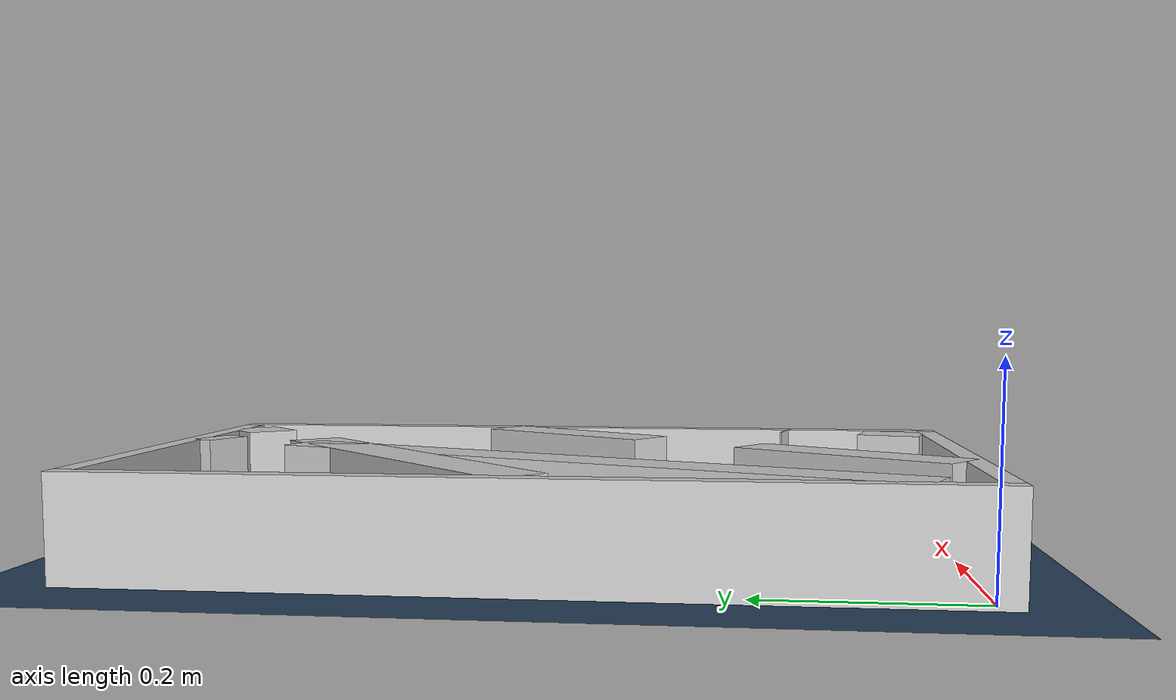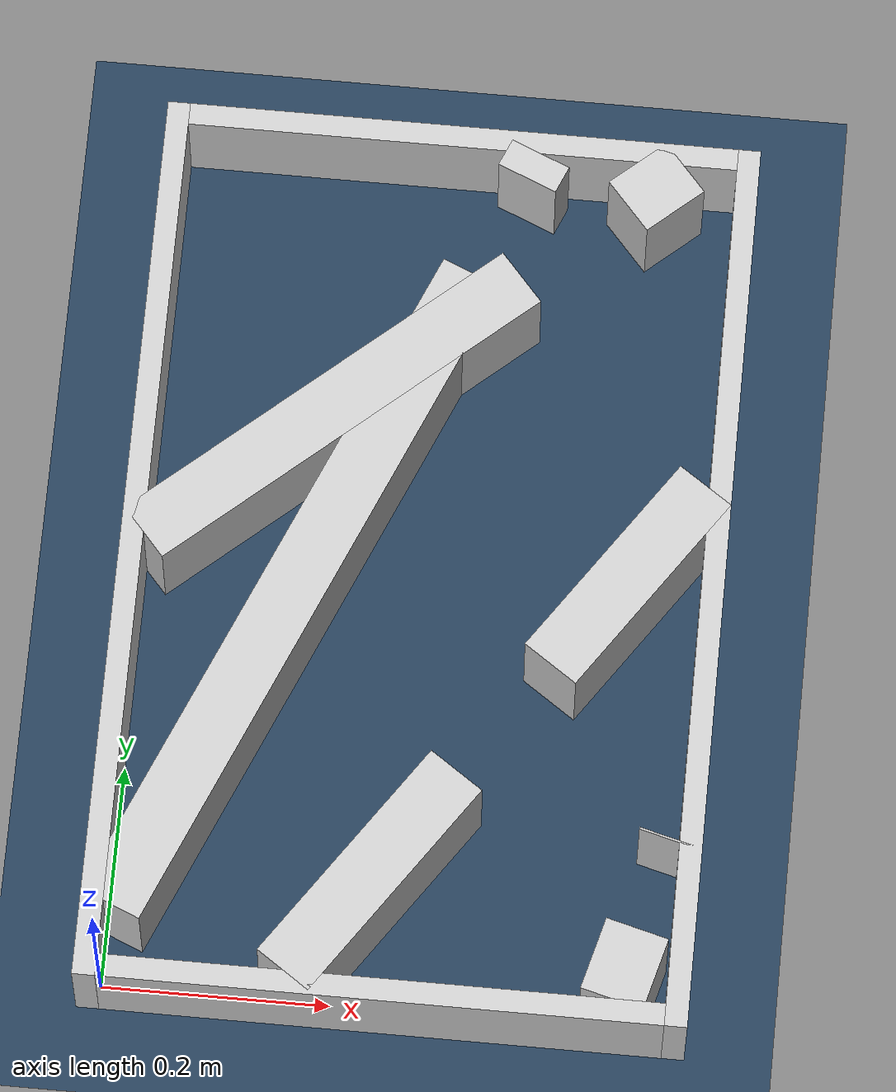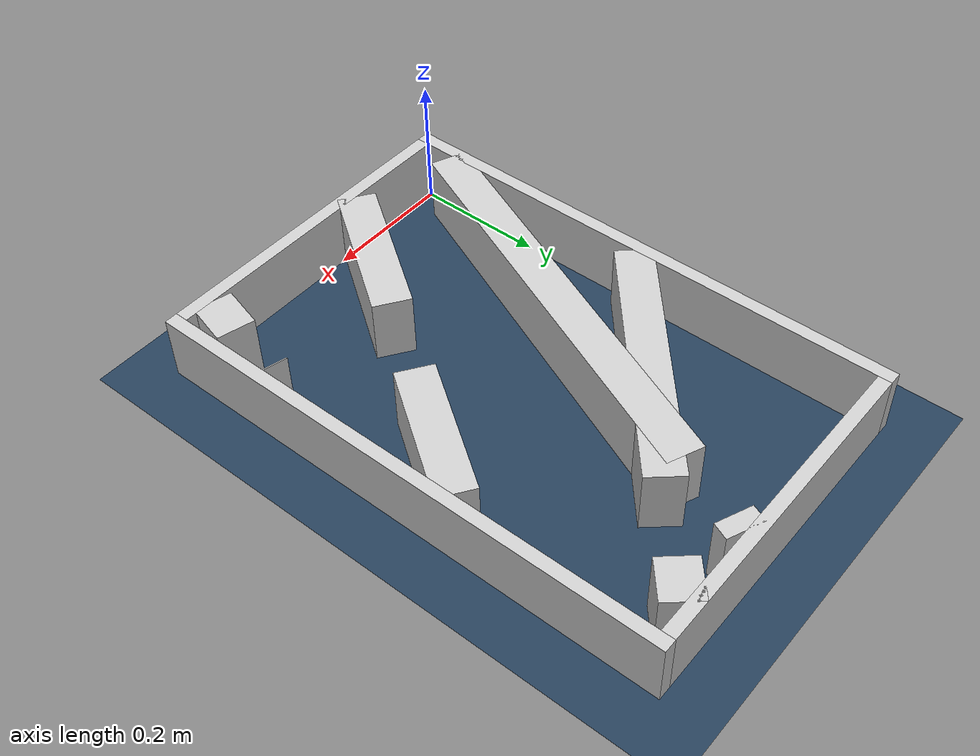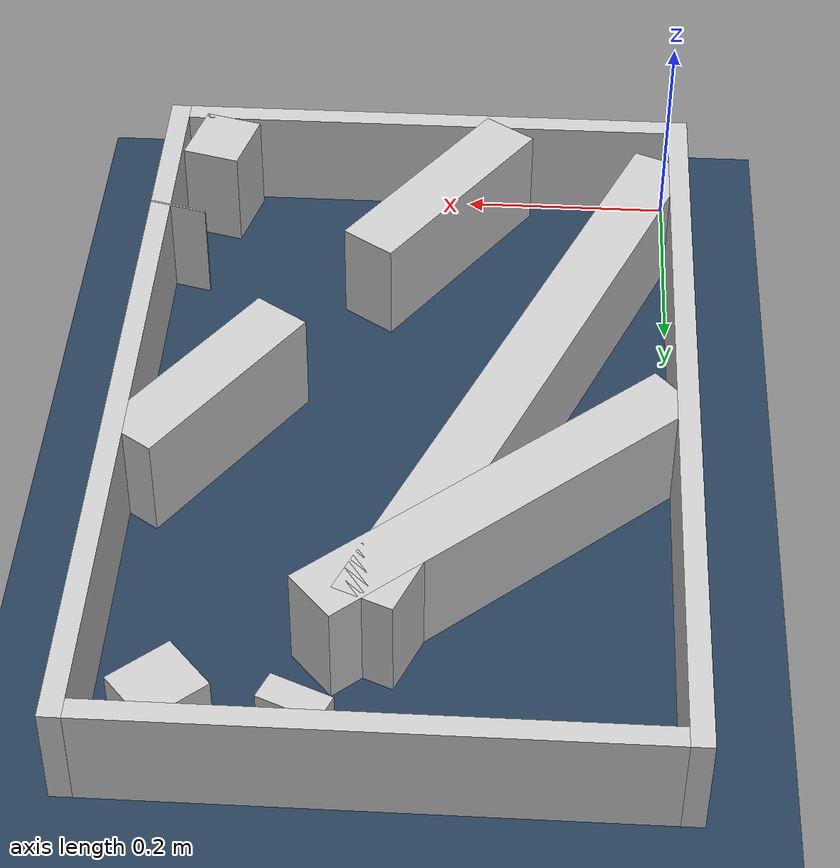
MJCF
<?xml version="1.0" ?>
<mujoco model="generated_real_template">
  <compiler angle="degree"/>
  <option timestep="0.002" integrator="implicitfast" iterations="100" cone="elliptic"/>
  <default>
    <geom density="1"/>
  </default>
  <asset>
    <texture builtin="gradient" height="3072" rgb1="0.3 0.5 0.7" rgb2="0 0 0" type="skybox" width="512"/>
    <texture builtin="checker" height="300" mark="edge" markrgb="0.8 0.8 0.8" name="groundplane" rgb1="0.2 0.3 0.4" rgb2="0.1 0.2 0.3" type="2d" width="300"/>
    <material name="groundplane" reflectance="0.2" texrepeat="5 5" texture="groundplane" texuniform="true"/>
  </asset>
  <worldbody>
    <light dir="0 0 -1" directional="true" pos="0 0 1.5"/>
    <geom name="floor" type="plane" condim="4" friction="0.5 0.005 0.001" material="groundplane" size="0 0 0.05"/>
    <body name="walls">
      <geom name="wall_boundary_left" type="box" condim="4" friction="1.0 0.005 0.0001" rgba="0.8 0.8 0.8 1" pos="-0.010000 0.387500 0.050000" euler="0 0 0.000000" size="0.010000 0.407500 0.050000"/>
      <geom name="wall_boundary_right" type="box" condim="4" friction="1.0 0.005 0.0001" rgba="0.8 0.8 0.8 1" pos="0.500000 0.387500 0.050000" euler="0 0 0.000000" size="0.010000 0.407500 0.050000"/>
      <geom name="wall_boundary_bottom" type="box" condim="4" friction="1.0 0.005 0.0001" rgba="0.8 0.8 0.8 1" pos="0.245000 -0.010000 0.050000" euler="0 0 0.000000" size="0.245000 0.010000 0.050000"/>
      <geom name="wall_boundary_top" type="box" condim="4" friction="1.0 0.005 0.0001" rgba="0.8 0.8 0.8 1" pos="0.245000 0.785000 0.050000" euler="0 0 0.000000" size="0.245000 0.010000 0.050000"/>
      <geom name="wall_inner_1_1" type="box" condim="4" friction="1.0 0.005 0.0001" rgba="0.8 0.8 0.8 1" pos="0.310146 0.762814 0.050000" euler="0 0 -112.959641" size="0.013235 0.028500 0.050000"/>
      <geom name="wall_inner_1_2" type="box" condim="4" friction="1.0 0.005 0.0001" rgba="0.8 0.8 0.8 1" pos="0.135487 0.350535 0.050000" euler="0 0 -112.959641" size="0.331324 0.028500 0.050000"/>
      <geom name="wall_inner_2_1" type="box" condim="4" friction="1.0 0.005 0.0001" rgba="0.8 0.8 0.8 1" pos="0.154418 0.521190 0.050000" euler="0 0 41.050335" size="0.204763 0.028500 0.050000"/>
      <geom name="wall_inner_2_2" type="box" condim="4" friction="1.0 0.005 0.0001" rgba="0.8 0.8 0.8 1" pos="0.420346 0.752768 0.050000" euler="0 0 41.050335" size="0.031578 0.028500 0.050000"/>
      <geom name="wall_inner_3_1" type="box" condim="4" friction="1.0 0.005 0.0001" rgba="0.8 0.8 0.8 1" pos="0.226297 0.096471 0.050000" euler="0 0 55.463133" size="0.117111 0.028500 0.050000"/>
      <geom name="wall_inner_3_2" type="box" condim="4" friction="1.0 0.005 0.0001" rgba="0.8 0.8 0.8 1" pos="0.425666 0.386155 0.050000" euler="0 0 55.463133" size="0.107342 0.028500 0.050000"/>
      <geom name="wall_inner_4_1" type="box" condim="4" friction="1.0 0.005 0.0001" rgba="0.8 0.8 0.8 1" pos="0.482197 0.147964 0.050000" euler="0 0 -104.681772" size="0.000917 0.028500 0.050000"/>
      <geom name="wall_inner_4_2" type="box" condim="4" friction="1.0 0.005 0.0001" rgba="0.8 0.8 0.8 1" pos="0.451899 0.032325 0.050000" euler="0 0 -104.681772" size="0.033416 0.028500 0.050000"/>
    </body>
  </worldbody>
</mujoco>
